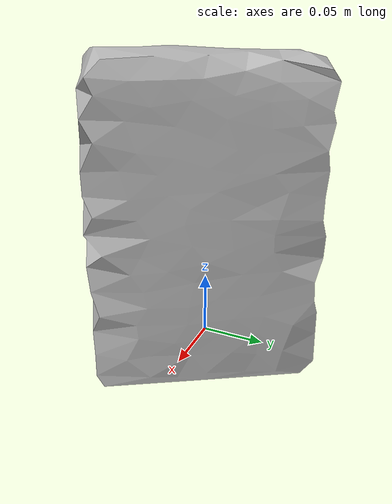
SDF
<?xml version="1.0" ?>
<sdf version="1.4">
  <model name="snacks">
    <link name="snacks_link">
      <inertial>
        <pose>0 0 0 0 0 0</pose>
        <mass>0.08</mass>
      </inertial>

      <visual name="snacks_visual">
        <pose>0 0 0 0 0 0</pose>
        <material>
          <script>
            <uri>model://snacks/materials/scripts</uri>
            <uri>model://snacks/materials/textures</uri>
            <name>snacks</name>
          </script>
        </material>
        <geometry>
          <mesh>
            <uri>model://snacks/meshes/snacks.dae</uri>
          </mesh>
        </geometry>
      </visual>

      <collision name="snacks_collision">
        <pose>0 0 0 0 0 0</pose>
        <geometry>
          <mesh>
            <uri>model://snacks/meshes/snacks.dae</uri>
          </mesh>
        </geometry>
        <surface>
          <friction>
            <ode>
              <mu>0.8</mu>
              <mu2>0.8</mu2>
            </ode>
          </friction>
        </surface>
      </collision>

    </link>
  </model>
</sdf>
